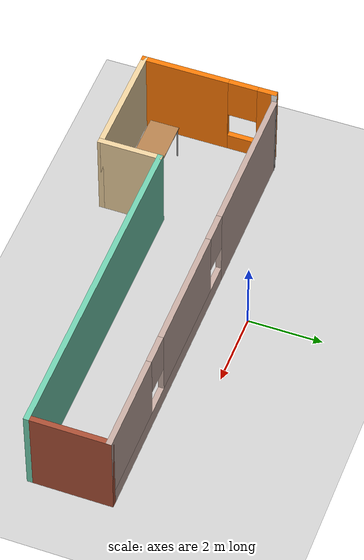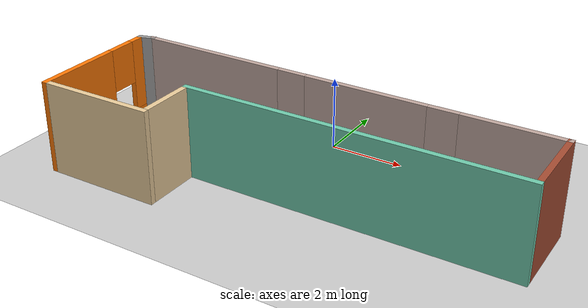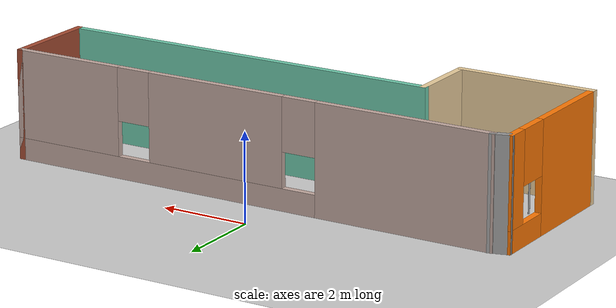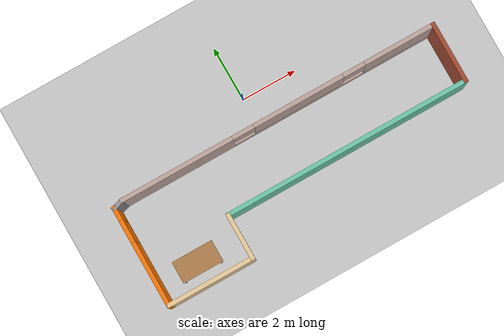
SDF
<sdf version="1.7">
 <world name="default">
  <light name="sun" type="directional">
   <pose>0 0 10 0 -0 0</pose>
   <diffuse>0.8 0.8 0.8 1</diffuse>
   <specular>0.2 0.2 0.2 1</specular>
   <attenuation>
    <range>1000</range>
    <constant>0.9</constant>
    <linear>0.01</linear>
    <quadratic>0.001</quadratic>
   </attenuation>
   <direction>-0.5 0.1 -0.9</direction>
   <spot><inner_angle>0</inner_angle><outer_angle>0</outer_angle><falloff>0</falloff></spot>
  </light>
  <model name="ground_plane">
   <static>1</static>
   <link name="link">
    <collision name="collision">
     <geometry><plane><normal>0 0 1</normal><size>100 100</size></plane></geometry>
     <surface>
      <contact><collide_bitmask>65535</collide_bitmask></contact>
      <friction><ode><mu>100</mu><mu2>50</mu2></ode></friction>
     </surface>
    </collision>
    <visual name="visual">
     <cast_shadows>0</cast_shadows>
     <geometry><plane><normal>0 0 1</normal><size>100 100</size></plane></geometry>
     <material>
      <script><uri>file://media/materials/scripts/gazebo.material</uri><name>Gazebo/Grey</name></script>
     </material>
    </visual>
   </link>
  </model>
  <gravity>0 0 -9.8</gravity>
  <magnetic_field>6e-06 2.3e-05 -4.2e-05</magnetic_field>
  <atmosphere type="adiabatic"/>
  <physics type="ode">
   <max_step_size>0.001</max_step_size>
   <real_time_factor>1</real_time_factor>
   <real_time_update_rate>1000</real_time_update_rate>
  </physics>
  <scene><ambient>0.4 0.4 0.4 1</ambient><background>0.7 0.7 0.7 1</background><shadows>1</shadows></scene>
  <spherical_coordinates>
   <surface_model>EARTH_WGS84</surface_model>
   <latitude_deg>0</latitude_deg>
   <longitude_deg>0</longitude_deg>
   <elevation>0</elevation>
   <heading_deg>0</heading_deg>
  </spherical_coordinates>
  <model name="home">
   <pose>0.526141 -2.4675 0 0 -0 0</pose>
   <link name="Wall_0">
    <pose>0.183859 1.3075 0 0 -0 0</pose>
    <visual name="Wall_0_Visual_0">
     <pose>-3.7925 0 1.25 0 -0 0</pose>
     <geometry><box><size>4.165 0.15 2.5</size></box></geometry>
     <material>
      <script><uri>file://media/materials/scripts/gazebo.material</uri><name>Gazebo/Grey</name></script>
      <ambient>0.760784 0.662745 0.627451 1</ambient>
     </material>
     <meta><layer>0</layer></meta>
    </visual>
    <collision name="Wall_0_Collision_0">
     <geometry><box><size>4.165 0.15 2.5</size></box></geometry>
     <pose>-3.7925 0 1.25 0 -0 0</pose>
    </collision>
    <visual name="Wall_0_Visual_1">
     <pose>2.0825 0 0.25 0 -0 0</pose>
     <geometry><box><size>7.585 0.15 0.5</size></box></geometry>
     <material>
      <script><uri>file://media/materials/scripts/gazebo.material</uri><name>Gazebo/Grey</name></script>
      <ambient>0.760784 0.662745 0.627451 1</ambient>
     </material>
     <meta><layer>0</layer></meta>
    </visual>
    <collision name="Wall_0_Collision_1">
     <geometry><box><size>7.585 0.15 0.5</size></box></geometry>
     <pose>2.0825 0 0.25 0 -0 0</pose>
    </collision>
    <visual name="Wall_0_Visual_2">
     <pose>0.755 0 1.5 0 -0 0</pose>
     <geometry><box><size>3.33 0.15 2</size></box></geometry>
     <material>
      <script><uri>file://media/materials/scripts/gazebo.material</uri><name>Gazebo/Grey</name></script>
      <ambient>0.760784 0.662745 0.627451 1</ambient>
     </material>
     <meta><layer>0</layer></meta>
    </visual>
    <collision name="Wall_0_Collision_2">
     <geometry><box><size>3.33 0.15 2</size></box></geometry>
     <pose>0.755 0 1.5 0 -0 0</pose>
    </collision>
    <visual name="Wall_0_Visual_3">
     <pose>4.5475 0 1.5 0 -0 0</pose>
     <geometry><box><size>2.655 0.15 2</size></box></geometry>
     <material>
      <script><uri>file://media/materials/scripts/gazebo.material</uri><name>Gazebo/Grey</name></script>
      <ambient>0.760784 0.662745 0.627451 1</ambient>
     </material>
     <meta><layer>0</layer></meta>
    </visual>
    <collision name="Wall_0_Collision_3">
     <geometry><box><size>2.655 0.15 2</size></box></geometry>
     <pose>4.5475 0 1.5 0 -0 0</pose>
    </collision>
    <visual name="Wall_0_Visual_4">
     <pose>-1.31 0 1.9 0 -0 0</pose>
     <geometry><box><size>0.8 0.15 1.2</size></box></geometry>
     <material>
      <script><uri>file://media/materials/scripts/gazebo.material</uri><name>Gazebo/Grey</name></script>
      <ambient>0.760784 0.662745 0.627451 1</ambient>
     </material>
     <meta><layer>0</layer></meta>
    </visual>
    <collision name="Wall_0_Collision_4">
     <geometry><box><size>0.8 0.15 1.2</size></box></geometry>
     <pose>-1.31 0 1.9 0 -0 0</pose>
    </collision>
    <visual name="Wall_0_Visual_5">
     <pose>2.82 0 1.9 0 -0 0</pose>
     <geometry><box><size>0.8 0.15 1.2</size></box></geometry>
     <material>
      <script><uri>file://media/materials/scripts/gazebo.material</uri><name>Gazebo/Grey</name></script>
      <ambient>0.760784 0.662745 0.627451 1</ambient>
     </material>
     <meta><layer>0</layer></meta>
    </visual>
    <collision name="Wall_0_Collision_5">
     <geometry><box><size>0.8 0.15 1.2</size></box></geometry>
     <pose>2.82 0 1.9 0 -0 0</pose>
    </collision>
   </link>
   <link name="Wall_1">
    <collision name="Wall_1_Collision">
     <geometry><box><size>2.25 0.15 2.5</size></box></geometry>
     <pose>0 0 1.25 0 -0 0</pose>
    </collision>
    <visual name="Wall_1_Visual">
     <pose>0 0 1.25 0 -0 0</pose>
     <geometry><box><size>2.25 0.15 2.5</size></box></geometry>
     <material>
      <script><uri>file://media/materials/scripts/gazebo.material</uri><name>Gazebo/Bricks</name></script>
      <ambient>1 1 1 1</ambient>
     </material>
     <meta><layer>0</layer></meta>
    </visual>
    <pose>5.98386 0.2575 0 0 -0 -1.5708</pose>
   </link>
   <link name="Wall_2">
    <collision name="Wall_2_Collision">
     <geometry><box><size>9 0.15 2.5</size></box></geometry>
     <pose>0 0 1.25 0 -0 0</pose>
    </collision>
    <visual name="Wall_2_Visual">
     <pose>0 0 1.25 0 -0 0</pose>
     <geometry><box><size>9 0.15 2.5</size></box></geometry>
     <material>
      <script><uri>file://media/materials/scripts/gazebo.material</uri><name>Gazebo/Grey</name></script>
      <ambient>0.435294 0.796078 0.67451 1</ambient>
     </material>
     <meta><layer>0</layer></meta>
    </visual>
    <pose>1.55886 -0.7925 0 0 -0 3.14159</pose>
   </link>
   <link name="Wall_3">
    <collision name="Wall_3_Collision">
     <geometry><box><size>1.75 0.15 2.5</size></box></geometry>
     <pose>0 0 1.25 0 -0 0</pose>
    </collision>
    <visual name="Wall_3_Visual">
     <pose>0 0 1.25 0 -0 0</pose>
     <geometry><box><size>1.75 0.15 2.5</size></box></geometry>
     <material>
      <script><uri>file://media/materials/scripts/gazebo.material</uri><name>Gazebo/Grey</name></script>
      <ambient>0.921569 0.807843 0.615686 1</ambient>
     </material>
     <meta><layer>0</layer></meta>
    </visual>
    <pose>-2.86614 -1.5925 0 0 -0 -1.5708</pose>
   </link>
   <link name="Wall_4">
    <collision name="Wall_4_Collision">
     <geometry><box><size>3.25 0.15 2.5</size></box></geometry>
     <pose>0 0 1.25 0 -0 0</pose>
    </collision>
    <visual name="Wall_4_Visual">
     <pose>0 0 1.25 0 -0 0</pose>
     <geometry><box><size>3.25 0.15 2.5</size></box></geometry>
     <material>
      <script><uri>file://media/materials/scripts/gazebo.material</uri><name>Gazebo/Grey</name></script>
      <ambient>0.921569 0.807843 0.615686 1</ambient>
     </material>
     <meta><layer>0</layer></meta>
    </visual>
    <pose>-4.41614 -2.3925 0 0 -0 3.14159</pose>
   </link>
   <link name="Wall_5">
    <pose>-5.96614 -0.5925 0 0 -0 1.5708</pose>
    <visual name="Wall_5_Visual_0">
     <pose>-0.6625 0 1.25 0 -0 0</pose>
     <geometry><box><size>2.425 0.15 2.5</size></box></geometry>
     <material>
      <script><uri>file://media/materials/scripts/gazebo.material</uri><name>Gazebo/Grey</name></script>
      <ambient>0.996078 0.47451 0.0196078 1</ambient>
     </material>
     <meta><layer>0</layer></meta>
    </visual>
    <collision name="Wall_5_Collision_0">
     <geometry><box><size>2.425 0.15 2.5</size></box></geometry>
     <pose>-0.6625 0 1.25 0 -0 0</pose>
    </collision>
    <visual name="Wall_5_Visual_1">
     <pose>1.2125 0 0.25 0 -0 0</pose>
     <geometry><box><size>1.325 0.15 0.5</size></box></geometry>
     <material>
      <script><uri>file://media/materials/scripts/gazebo.material</uri><name>Gazebo/Grey</name></script>
      <ambient>0.996078 0.47451 0.0196078 1</ambient>
     </material>
     <meta><layer>0</layer></meta>
    </visual>
    <collision name="Wall_5_Collision_1">
     <geometry><box><size>1.325 0.15 0.5</size></box></geometry>
     <pose>1.2125 0 0.25 0 -0 0</pose>
    </collision>
    <visual name="Wall_5_Visual_2">
     <pose>1.6125 0 1.5 0 -0 0</pose>
     <geometry><box><size>0.525 0.15 2</size></box></geometry>
     <material>
      <script><uri>file://media/materials/scripts/gazebo.material</uri><name>Gazebo/Grey</name></script>
      <ambient>0.996078 0.47451 0.0196078 1</ambient>
     </material>
     <meta><layer>0</layer></meta>
    </visual>
    <collision name="Wall_5_Collision_2">
     <geometry><box><size>0.525 0.15 2</size></box></geometry>
     <pose>1.6125 0 1.5 0 -0 0</pose>
    </collision>
    <visual name="Wall_5_Visual_3">
     <pose>0.95 0 1.9 0 -0 0</pose>
     <geometry><box><size>0.8 0.15 1.2</size></box></geometry>
     <material>
      <script><uri>file://media/materials/scripts/gazebo.material</uri><name>Gazebo/Grey</name></script>
      <ambient>0.996078 0.47451 0.0196078 1</ambient>
     </material>
     <meta><layer>0</layer></meta>
    </visual>
    <collision name="Wall_5_Collision_3">
     <geometry><box><size>0.8 0.15 1.2</size></box></geometry>
     <pose>0.95 0 1.9 0 -0 0</pose>
    </collision>
   </link>
   <link name="Wall_6">
    <collision name="Wall_6_Collision">
     <geometry><box><size>0.514005 0.15 2.5</size></box></geometry>
     <pose>0 0 1.25 0 -0 0</pose>
    </collision>
    <visual name="Wall_6_Visual">
     <pose>0 0 1.25 0 -0 0</pose>
     <geometry><box><size>0.514005 0.15 2.5</size></box></geometry>
     <material>
      <script><uri>file://media/materials/scripts/gazebo.material</uri><name>Gazebo/Grey</name></script>
      <ambient>1 1 1 1</ambient>
     </material>
     <meta><layer>0</layer></meta>
    </visual>
    <pose>-5.79114 1.2575 0 0 -0 0.2783</pose>
   </link>
   <static>1</static>
  </model>
  <model name="table">
   <static>1</static>
   <link name="link">
    <collision name="surface">
     <pose>0 0 1 0 -0 0</pose>
     <geometry><box><size>1.5 0.8 0.03</size></box></geometry>
     <surface><friction><ode><mu>0.6</mu><mu2>0.6</mu2></ode></friction></surface>
    </collision>
    <visual name="visual1">
     <pose>0 0 1 0 -0 0</pose>
     <geometry><box><size>1.5 0.8 0.03</size></box></geometry>
     <material>
      <script><uri>file://media/materials/scripts/gazebo.material</uri><name>Gazebo/Wood</name></script>
     </material>
    </visual>
    <collision name="front_left_leg">
     <pose>0.68 0.38 0.5 0 -0 0</pose>
     <geometry><cylinder><radius>0.02</radius><length>1</length></cylinder></geometry>
    </collision>
    <visual name="front_left_leg">
     <pose>0.68 0.38 0.5 0 -0 0</pose>
     <geometry><cylinder><radius>0.02</radius><length>1</length></cylinder></geometry>
     <material>
      <script><uri>file://media/materials/scripts/gazebo.material</uri><name>Gazebo/Grey</name></script>
     </material>
    </visual>
    <collision name="front_right_leg">
     <pose>0.68 -0.38 0.5 0 -0 0</pose>
     <geometry><cylinder><radius>0.02</radius><length>1</length></cylinder></geometry>
    </collision>
    <visual name="front_right_leg">
     <pose>0.68 -0.38 0.5 0 -0 0</pose>
     <geometry><cylinder><radius>0.02</radius><length>1</length></cylinder></geometry>
     <material>
      <script><uri>file://media/materials/scripts/gazebo.material</uri><name>Gazebo/Grey</name></script>
     </material>
    </visual>
    <collision name="back_right_leg">
     <pose>-0.68 -0.38 0.5 0 -0 0</pose>
     <geometry><cylinder><radius>0.02</radius><length>1</length></cylinder></geometry>
    </collision>
    <visual name="back_right_leg">
     <pose>-0.68 -0.38 0.5 0 -0 0</pose>
     <geometry><cylinder><radius>0.02</radius><length>1</length></cylinder></geometry>
     <material>
      <script><uri>file://media/materials/scripts/gazebo.material</uri><name>Gazebo/Grey</name></script>
     </material>
    </visual>
    <collision name="back_left_leg">
     <pose>-0.68 0.38 0.5 0 -0 0</pose>
     <geometry><cylinder><radius>0.02</radius><length>1</length></cylinder></geometry>
    </collision>
    <visual name="back_left_leg">
     <pose>-0.68 0.38 0.5 0 -0 0</pose>
     <geometry><cylinder><radius>0.02</radius><length>1</length></cylinder></geometry>
     <material>
      <script><uri>file://media/materials/scripts/gazebo.material</uri><name>Gazebo/Grey</name></script>
     </material>
    </visual>
   </link>
   <pose>-3.97754 -4.0275 0 0 -0 0</pose>
  </model>
 </world>
</sdf>
